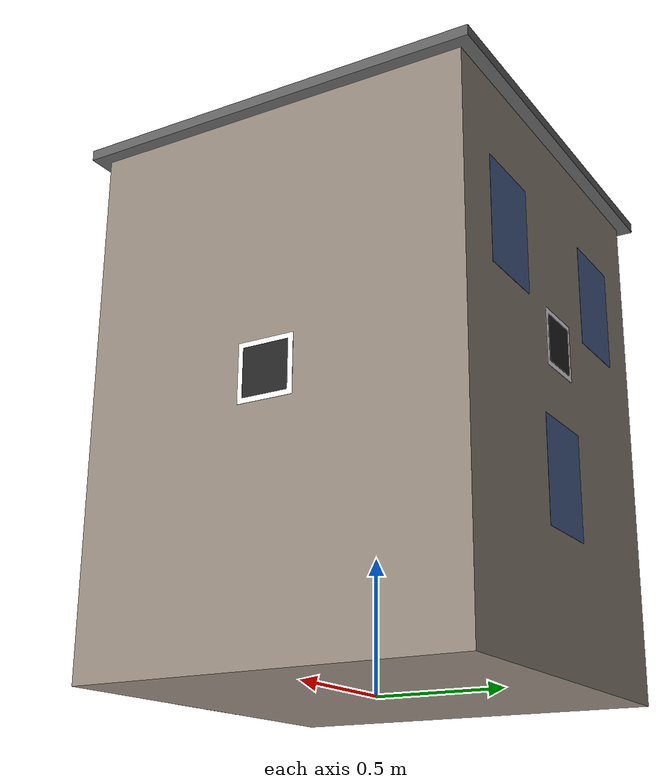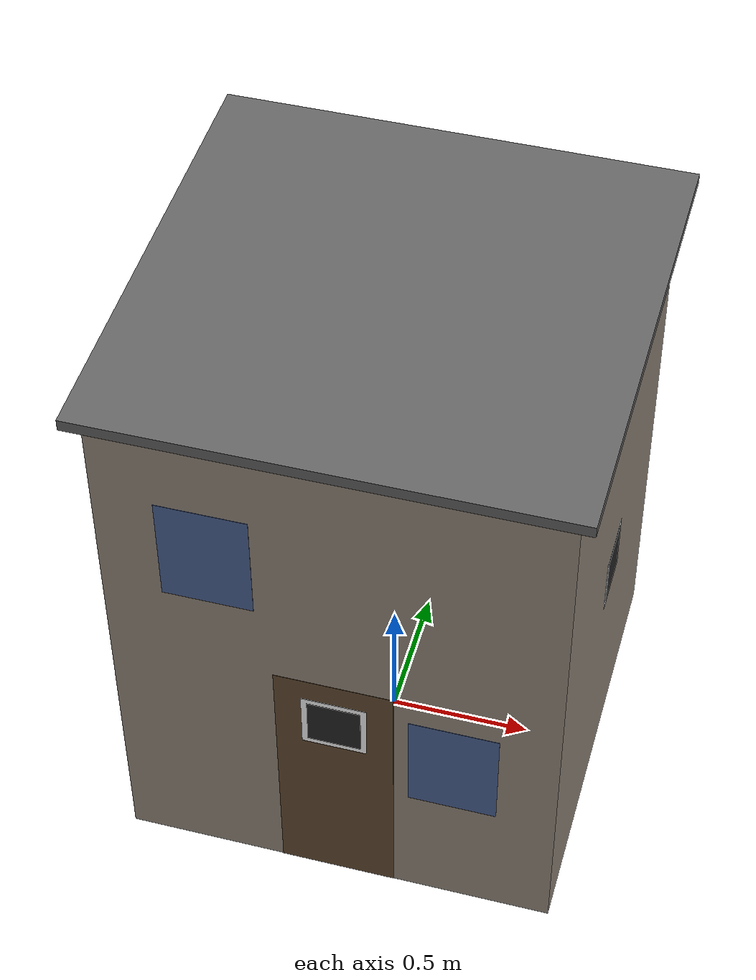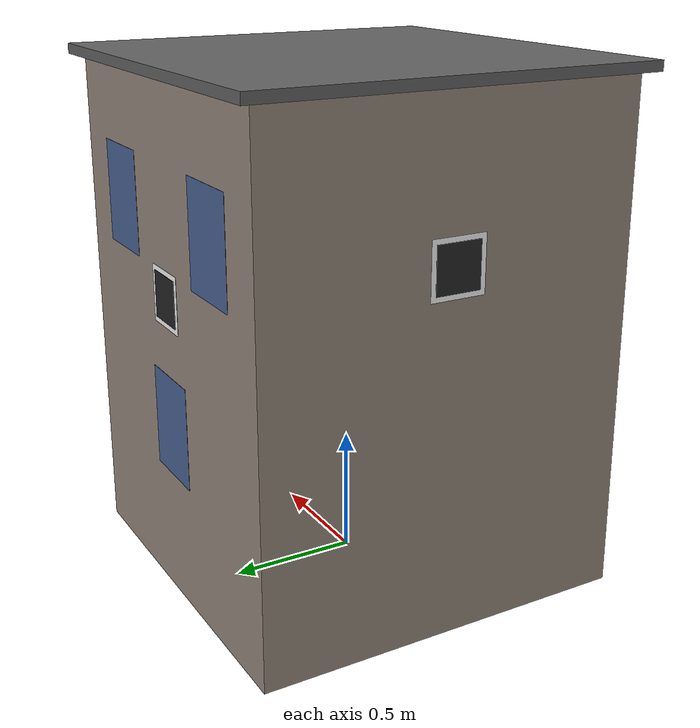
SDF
<?xml version="1.0" ?>
<!--
  FIRA Air - Tall Building Model
  Target 3 for victim search mission
  2m high cuboid with QR codes containing victim information
-->
<sdf version="1.9">
  <model name="tall_building">
    <static>true</static>
    <link name="link">

      <!-- Main building structure -->
      <visual name="building_body">
        <pose>0 0 1 0 0 0</pose>
        <geometry>
          <box>
            <size>1.5 1.5 2</size>
          </box>
        </geometry>
        <material>
          <ambient>0.5 0.45 0.4 1</ambient>
          <diffuse>0.6 0.55 0.5 1</diffuse>
          <specular>0.2 0.2 0.2 1</specular>
        </material>
      </visual>

      <collision name="collision">
        <pose>0 0 1 0 0 0</pose>
        <geometry>
          <box>
            <size>1.5 1.5 2</size>
          </box>
        </geometry>
      </collision>

      <!-- Roof edge -->
      <visual name="roof_edge">
        <pose>0 0 2.02 0 0 0</pose>
        <geometry>
          <box>
            <size>1.6 1.6 0.04</size>
          </box>
        </geometry>
        <material>
          <ambient>0.3 0.3 0.3 1</ambient>
          <diffuse>0.4 0.4 0.4 1</diffuse>
        </material>
      </visual>

      <!-- Windows on each side -->
      <!-- North face windows -->
      <visual name="window_n1">
        <pose>-0.4 0.751 1.5 0 0 0</pose>
        <geometry>
          <box>
            <size>0.3 0.001 0.4</size>
          </box>
        </geometry>
        <material>
          <ambient>0.2 0.3 0.5 1</ambient>
          <diffuse>0.3 0.4 0.6 1</diffuse>
        </material>
      </visual>

      <visual name="window_n2">
        <pose>0.4 0.751 1.5 0 0 0</pose>
        <geometry>
          <box>
            <size>0.3 0.001 0.4</size>
          </box>
        </geometry>
        <material>
          <ambient>0.2 0.3 0.5 1</ambient>
          <diffuse>0.3 0.4 0.6 1</diffuse>
        </material>
      </visual>

      <visual name="window_n3">
        <pose>0 0.751 0.7 0 0 0</pose>
        <geometry>
          <box>
            <size>0.3 0.001 0.4</size>
          </box>
        </geometry>
        <material>
          <ambient>0.2 0.3 0.5 1</ambient>
          <diffuse>0.3 0.4 0.6 1</diffuse>
        </material>
      </visual>

      <!-- QR code on North face (victim info) -->
      <visual name="qr_north_bg">
        <pose>0 0.752 1.2 0 0 0</pose>
        <geometry>
          <box>
            <size>0.22 0.001 0.22</size>
          </box>
        </geometry>
        <material>
          <ambient>1.0 1.0 1.0 1</ambient>
          <diffuse>1.0 1.0 1.0 1</diffuse>
        </material>
      </visual>

      <visual name="qr_north_pattern">
        <pose>0 0.753 1.2 0 0 0</pose>
        <geometry>
          <box>
            <size>0.18 0.001 0.18</size>
          </box>
        </geometry>
        <material>
          <ambient>0.1 0.1 0.1 1</ambient>
          <diffuse>0.15 0.15 0.15 1</diffuse>
        </material>
      </visual>

      <!-- South face windows -->
      <visual name="window_s1">
        <pose>-0.4 -0.751 1.5 0 0 0</pose>
        <geometry>
          <box>
            <size>0.3 0.001 0.4</size>
          </box>
        </geometry>
        <material>
          <ambient>0.2 0.3 0.5 1</ambient>
          <diffuse>0.3 0.4 0.6 1</diffuse>
        </material>
      </visual>

      <visual name="window_s2">
        <pose>0.4 -0.751 0.7 0 0 0</pose>
        <geometry>
          <box>
            <size>0.3 0.001 0.4</size>
          </box>
        </geometry>
        <material>
          <ambient>0.2 0.3 0.5 1</ambient>
          <diffuse>0.3 0.4 0.6 1</diffuse>
        </material>
      </visual>

      <!-- QR code on South face -->
      <visual name="qr_south_bg">
        <pose>0 -0.752 0.8 0 0 0</pose>
        <geometry>
          <box>
            <size>0.22 0.001 0.22</size>
          </box>
        </geometry>
        <material>
          <ambient>1.0 1.0 1.0 1</ambient>
          <diffuse>1.0 1.0 1.0 1</diffuse>
        </material>
      </visual>

      <visual name="qr_south_pattern">
        <pose>0 -0.753 0.8 0 0 0</pose>
        <geometry>
          <box>
            <size>0.18 0.001 0.18</size>
          </box>
        </geometry>
        <material>
          <ambient>0.1 0.1 0.1 1</ambient>
          <diffuse>0.15 0.15 0.15 1</diffuse>
        </material>
      </visual>

      <!-- QR code on East face -->
      <visual name="qr_east_bg">
        <pose>0.752 0 1.0 0 0 1.5707</pose>
        <geometry>
          <box>
            <size>0.22 0.001 0.22</size>
          </box>
        </geometry>
        <material>
          <ambient>1.0 1.0 1.0 1</ambient>
          <diffuse>1.0 1.0 1.0 1</diffuse>
        </material>
      </visual>

      <visual name="qr_east_pattern">
        <pose>0.753 0 1.0 0 0 1.5707</pose>
        <geometry>
          <box>
            <size>0.18 0.001 0.18</size>
          </box>
        </geometry>
        <material>
          <ambient>0.1 0.1 0.1 1</ambient>
          <diffuse>0.15 0.15 0.15 1</diffuse>
        </material>
      </visual>

      <!-- QR code on West face -->
      <visual name="qr_west_bg">
        <pose>-0.752 0 1.4 0 0 -1.5707</pose>
        <geometry>
          <box>
            <size>0.22 0.001 0.22</size>
          </box>
        </geometry>
        <material>
          <ambient>1.0 1.0 1.0 1</ambient>
          <diffuse>1.0 1.0 1.0 1</diffuse>
        </material>
      </visual>

      <visual name="qr_west_pattern">
        <pose>-0.753 0 1.4 0 0 -1.5707</pose>
        <geometry>
          <box>
            <size>0.18 0.001 0.18</size>
          </box>
        </geometry>
        <material>
          <ambient>0.1 0.1 0.1 1</ambient>
          <diffuse>0.15 0.15 0.15 1</diffuse>
        </material>
      </visual>

      <!-- Door on South face -->
      <visual name="door">
        <pose>0 -0.751 0.5 0 0 0</pose>
        <geometry>
          <box>
            <size>0.4 0.001 1</size>
          </box>
        </geometry>
        <material>
          <ambient>0.3 0.2 0.15 1</ambient>
          <diffuse>0.4 0.3 0.2 1</diffuse>
        </material>
      </visual>

    </link>
  </model>
</sdf>
